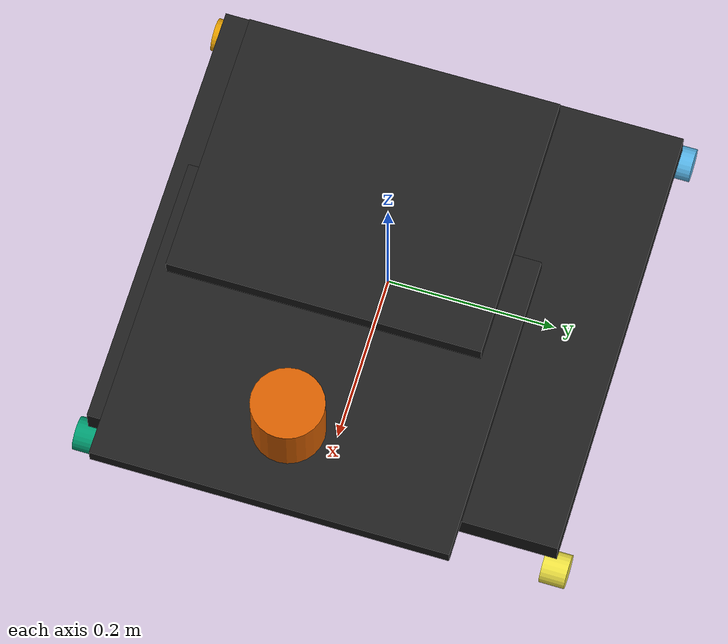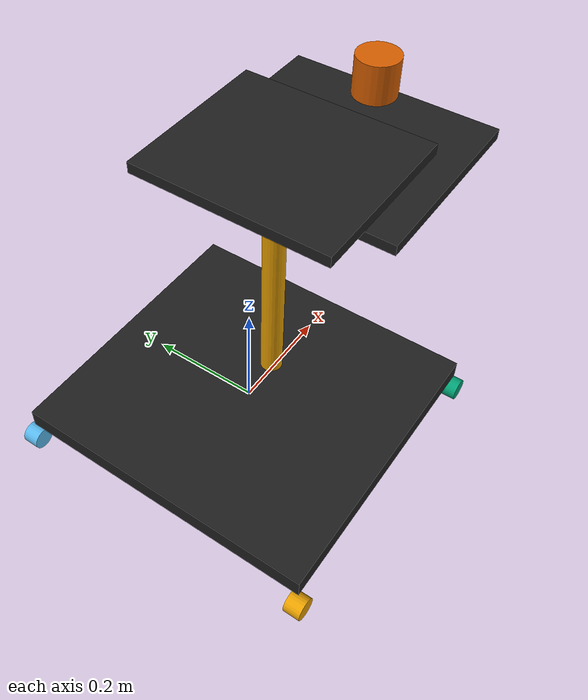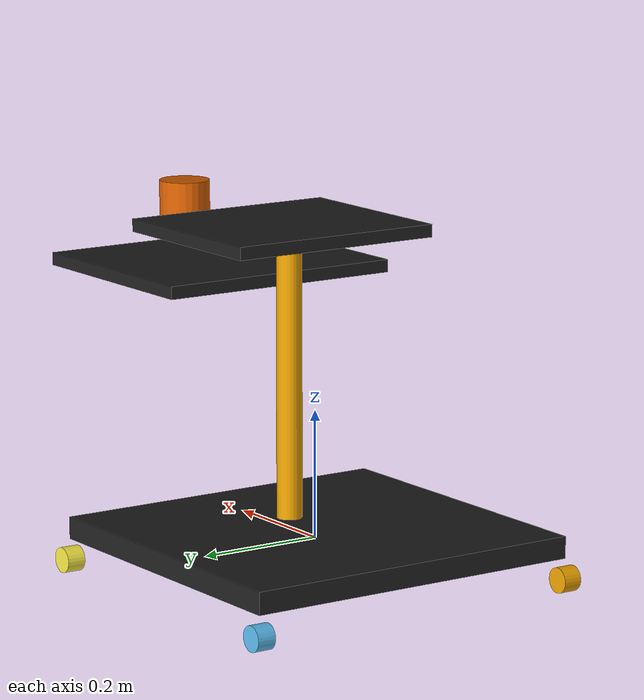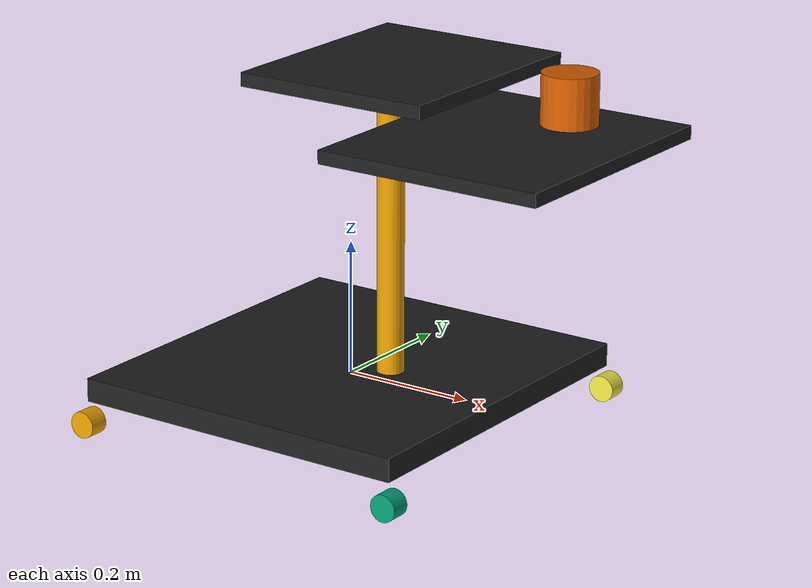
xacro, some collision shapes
<?xml version="1.0"?>
<robot name="home_robot" xmlns:xacro="http://ros.org/wiki/xacro">
 <xacro:include filename="$(find robot_description)/urdf/common_properties.xacro"/>
 <xacro:include filename="$(find robot_description)/urdf/OS1-32.urdf.xacro"/>
<xacro:macro name ="home_robot_platform">
 <!-- Robot dimensions -->
  <xacro:property name="base_length" value="0.53" />
  <xacro:property name="base_width" value="0.56" />
  <xacro:property name="base_height" value="0.07" />
  <xacro:property name="wheel_diam" value="0.04" />
  <xacro:property name="wheel_width" value="0.03" />
  <xacro:property name="platform1_elevation" value="0.83" />
  <xacro:property name="platform2_elevation" value="1.0" />
  <xacro:property name="column_diam" value="0.04" />
  <xacro:property name="platform1_length" value="0.35" />
  <xacro:property name="platform1_width" value="0.40" />
  <xacro:property name="platform2_length" value="0.3" />
  <xacro:property name="platform2_width" value="0.35" />
  <xacro:property name="platform_height" value="0.02" />
  <xacro:property name="platform1_elevation" value="0.71" />
  <xacro:property name="platform2_elevation" value="0.87" />
  <xacro:property name="pi" value="3.1415926535897931" />

<!-- Macro to define wheels at back  -->
  <xacro:macro name="wheel_back" params="suffix reflect">

  <joint name="wheel_back_${suffix}_joint" type="continuous">
    <parent link="base_link"/>
    <child link="wheel_back_${suffix}_link"/>
    <axis xyz="0 0 1"/>
    <origin xyz="${-base_length/2} ${-base_width/2*reflect} ${wheel_diam/2 - base_height}" rpy="${-pi/2} 0 0"/>
  </joint>

  <link name="wheel_back_${suffix}_link">
    <visual>
      <geometry>
        <cylinder length="${wheel_width}" radius="${wheel_diam/2}"/>
      </geometry>
      <origin rpy="0 0 0" xyz="0 0 0"/>
      <material name="dark"/>
    </visual>

   <collision>
      <origin rpy="0 0 0" xyz="0 0 0"/>
      <geometry>
        <cylinder length="${wheel_width}" radius="${wheel_diam/2}"/>
      </geometry>
    </collision>

    <inertial>
 <!-- Center of mass origin -->
    <origin xyz="0 0 0"/>

      <mass value="3.4"/>
      <inertia ixx="0.0067" ixy="-0" ixz="0"
               iyy="0.0123" iyz="0"
               izz="0.0067" />
    </inertial>

  </link>

  </xacro:macro>

<!-- Macro to define wheels at front  -->
  <xacro:macro name="wheel_front" params="suffix reflect">

  <joint name="wheel_front_${suffix}_joint" type="continuous">
    <parent link="base_link"/>
    <child link="wheel_front_${suffix}_link"/>
    <axis xyz="0 0 1"/>
    <origin xyz="${base_length/2} ${-base_width/2*reflect} ${wheel_diam/2 - base_height}" rpy="${-pi/2} 0 0"/>
  </joint>

  <link name="wheel_front_${suffix}_link">
    <visual>
      <geometry>
        <cylinder length="${wheel_width}" radius="${wheel_diam/2}"/>
      </geometry>
      <origin rpy="0 0 0" xyz="0 0 0"/>
      <material name="dark"/>
    </visual>

   <collision>
      <origin rpy="0 0 0" xyz="0 0 0"/>
      <geometry>
        <cylinder length="${wheel_width}" radius="${wheel_diam/2}"/>
      </geometry>
    </collision>

    <inertial>
 <!-- Center of mass origin -->
    <origin xyz="0 0 0"/>

      <mass value="3.4"/>
      <inertia ixx="0.0067" ixy="-0" ixz="0"
               iyy="0.0123" iyz="0"
               izz="0.0067" />
    </inertial>

  </link>

  </xacro:macro>

<!-- Platforms column macro -->
  <joint name="platform_column_joint" type="fixed">
    <parent link="base_link"/>
    <child link="platform_column_link"/>
    <origin xyz="0.07 0 0.22"/>
  </joint>
 <link name="platform_column_link">
    <visual>
      <geometry>
          <cylinder length="${(platform2_elevation/2)+0.02}" radius="${column_diam/2}"/>
      </geometry>
      <origin rpy="0 0 0" xyz="0 0 0"/>
      <material name="dark"/>
    </visual>
   <collision>
      <origin rpy="0 0 0" xyz="0 0 0"/>
      <geometry>
        <cylinder length="${platform2_elevation-base_height}" radius="${column_diam}"/>
      </geometry>
   </collision>
   <inertial>

    <origin xyz="0 0 0" rpy="0 0 0"/>

      <mass value="1.25"/>
      <inertia ixx="0.045453" ixy="0" ixz="0"
               iyy="0.049627" iyz="0"
               izz="0.004174" />
    </inertial>

  </link>>

<!-- Platform dimensions -->
    <link name="base_link">
    <visual>
      <origin xyz="0 0 0"/>
      <geometry>
          <box size ="${base_length} ${base_width} ${base_height/2}"/>
      </geometry>
      <material name="light_black" />
    </visual>
   <collision>
      <origin xyz="0 0 0"/>
      <geometry>
        <box size ="${base_length} ${base_width} ${base_height}"/>
      </geometry>
    </collision>

</link>

<!-- Upper platform -->
<joint name="platform2_joint" type="fixed">
	<parent link="base_link"/>
	<child link="platform2_link"/>
        <origin xyz="${base_length/2-platform2_width/2} 0 ${(base_height + platform2_elevation)/2}"/>
</joint>

    <link name="platform2_link">
    <visual>
	<origin rpy="0 0 0" xyz="0 0 0"/>
      <geometry>
        <box size ="${platform2_length} ${platform2_width} ${platform_height}"/>
      </geometry>
      <material name="light_black" />
    </visual>
   <collision>
      <origin rpy="0 0 0" xyz="0 0 0"/>
      <geometry>
        <box size ="${platform2_length} ${platform2_width} ${platform_height}"/>
      </geometry>
    </collision>

    <inertial>

    <origin xyz="0 0 0" rpy="0 0 0"/>

      <mass value="3.12"/>
      <inertia ixx="0.065" ixy="0" ixz="0"
               iyy="0.0816" iyz="0"
               izz="0.147" />
    </inertial>

</link>

<!-- Lower platform -->
<joint name="platform1_joint" type="fixed">
	<parent link="base_link"/>
	<child link="platform1_link"/>
        <origin xyz="${base_length/2} 0 ${(base_height + platform1_elevation)/2}"/>
</joint>

    <link name="platform1_link">
    <visual>
        <origin rpy="0 0 0" xyz="0 0 0"/>
      <geometry>
        <box size ="${platform1_length} ${platform1_width} ${platform_height}"/>
      </geometry>
      <material name="light_black" />
    </visual>
   <collision>
      <origin rpy="0 0 0" xyz="0 0 0"/>
      <geometry>
        <box size ="${platform1_length} ${platform1_width} ${platform_height}"/>
      </geometry>
    </collision>

    <inertial>

    <origin xyz="0 0 0" rpy="0 0 0"/>

      <mass value="2.52"/>
      <inertia ixx="0.065" ixy="0" ixz="0"
               iyy="0.0816" iyz="0"
               izz="0.147" />
    </inertial>

</link>

<!-- Sensors -->

<xacro:IG1 parent="base_link" name="IMU" topic="/imu/data">
    <origin xyz="${(base_length/2)+0.095} -0.025 ${((base_height + platform1_elevation)/2)+0.072}" rpy="0 0 0" />
</xacro:IG1>

<xacro:OS1-32 parent="base_link" name="os1_sensor" topic_points="/os1_cloud_node/points" topic_imu="/os1_cloud_node/imu">
    <origin xyz="${(base_length/2)+0.1} 0 ${((base_height + platform1_elevation)/2)+0.045}" rpy="0 0 0" />
</xacro:OS1-32>

<!-- Wheels -->
 <xacro:wheel_back suffix="left" reflect ="1"/>
 <xacro:wheel_back suffix="right" reflect ="-1"/>
 <xacro:wheel_front suffix="left" reflect="1"/>
 <xacro:wheel_front suffix="right" reflect="-1"/>

</xacro:macro>

<xacro:macro name="IG1" params="*origin parent:=base_link topic:=/imu/data name:=IMU">
    <joint name="${name}_sensor_joint" type="fixed">
        <xacro:insert_block name="origin" />
        <parent link="${parent}"/>
        <child link="${name}_sensor_link"/>
    </joint>

    <link name="${name}_sensor_link">
        <collision>
            <origin xyz="0 0 0" rpy="0 0 0"/>
            <geometry>
                <box size="0.051 0.045 0.024"/>
            </geometry>
        </collision>
        <visual>
            <origin xyz="0 0 0" rpy="0 0 0"/>
            <geometry>
                        <mesh filename="package://robot_description/meshes/sensors/IG1.stl" />
            </geometry>
            <material name="dark"/>
        </visual>
        <inertial>
            <mass value="0.001" />
            <origin xyz="0 0 0" rpy="0 0 0"/>
            <inertia ixx="0.00000015" ixy="0" ixz="0" iyy="0.00000015" iyz="0" izz="0.00000015" />
        </inertial>
    </link>

</xacro:macro>

<xacro:home_robot_platform />
</robot>

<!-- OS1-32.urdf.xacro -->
<robot xmlns:xacro="http://www.ros.org/wiki/xacro" name="OS1-32">
  <xacro:property name="M_PI" value="3.1415926535897931" />
  <xacro:macro name="OS1-32" params="*origin parent:=base_link name:=os1_sensor topic_points:=/os1_cloud_node/points topic_imu:=/os1_cloud_node/imu hz:=10 lasers:=32 samples:=512 min_range:=0.9 max_range:=75.0 noise:=0.008 min_angle:=-${M_PI} max_angle:=${M_PI} lidar_link:=os1_lidar imu_link:=os1_imu vfov_min:=-.26 vfov_max:=.26">

    <joint name="${name}_mount_joint" type="fixed">
      <xacro:insert_block name="origin" />
      <parent link="${parent}"/>
      <child link="${name}"/>
    </joint>

    <link name="${name}">
      <inertial>
         <mass value="0.33"/>
         <origin xyz="0 0 0.0365" rpy="0 0 0" />
         <inertia ixx="0.000241148" ixy="0" ixz="0"
          iyy="0.000241148" iyz="0" izz="0.000264"/>
      </inertial>
      <collision name="base_collision">
         <origin xyz="0 0 0.0365" rpy="0 0 0" />
         <geometry>
 	        <cylinder radius="0.04" length="0.073"/>
         </geometry>
      </collision>
      <visual name="base_visual">
         <origin xyz="0 0 0.0" rpy="0 0 1.5707" />
         <geometry>
             <mesh filename="package://robot_description/meshes/sensors/os1_32.dae" />
         </geometry>
      </visual>
    </link>

    <link name="${imu_link}" />

    <link name="${lidar_link}" />

    <joint name="${name}_imu_link_joint" type="fixed">
      <parent link="${name}" />
      <child link="${imu_link}" />
      <origin xyz="0.006253 -0.011775 0.007645" rpy="0 0 0" />
    </joint>
    <gazebo reference="${imu_link}">
    </gazebo>

    <joint name="${name}_lidar_link_joint" type="fixed">
      <parent link="${name}" />
      <child link="${lidar_link}" />
      <origin xyz="0.0 0.0 0.03618" rpy="0 0 0" />
    </joint>

    <!-- Gazebo requires the ouster_gazebo_plugins package -->
    <gazebo reference="${name}">
        <sensor type="ray" name="${name}-OS1-32">
          <pose>0 0 0 0 0 0</pose>
          <visualize>false</visualize>
          <update_rate>${hz}</update_rate>
          <ray>
            <scan>
              <horizontal>
                <samples>${samples}</samples>
                <resolution>1</resolution>
                <min_angle>${min_angle}</min_angle>
                <max_angle>${max_angle}</max_angle>
              </horizontal>
              <vertical>
                <samples>${lasers}</samples>
                <resolution>1</resolution>
                <min_angle>${vfov_min}</min_angle>
                <max_angle>${vfov_max}</max_angle>
              </vertical>
            </scan>
            <range>
              <min>${min_range}</min>
              <max>${max_range}</max>
              <resolution>0.03</resolution>
            </range>
          </ray>
          <plugin name="gazebo_ros_laser_controller" filename="libgazebo_ros_ouster_laser.so">
            <topicName>${topic_points}</topicName>
            <frameName>${lidar_link}</frameName>
            <min_range>${min_range}</min_range>
            <max_range>${max_range}</max_range>
            <gaussianNoise>${noise}</gaussianNoise>
          </plugin>
        </sensor>
    </gazebo>

    <!-- IMU -->
  <gazebo>
    <plugin name="imu_controller" filename="libhector_gazebo_ros_imu.so">
      <robotNamespace>/</robotNamespace>
      <updateRate>100.0</updateRate>
      <bodyName>${imu_link}</bodyName>
      <topicName>${topic_imu}</topicName>
      <accelDrift>0.005 0.005 0.005</accelDrift>
      <accelGaussianNoise>0.005 0.005 0.005</accelGaussianNoise>
      <rateDrift>0.005 0.005 0.005 </rateDrift>
      <rateGaussianNoise>0.005 0.005 0.005 </rateGaussianNoise>
      <headingDrift>0.005</headingDrift>
      <headingGaussianNoise>0.005</headingGaussianNoise>
    </plugin>
  </gazebo>

  </xacro:macro>
</robot>
